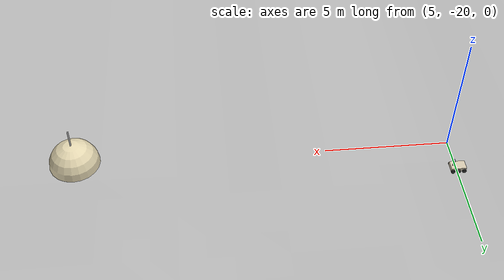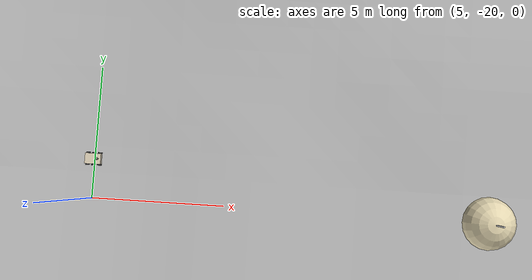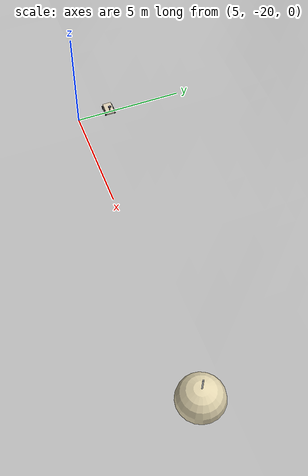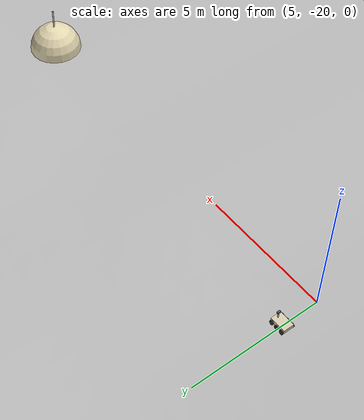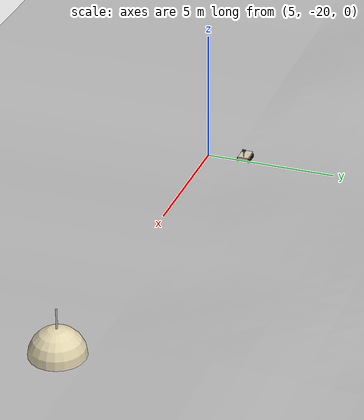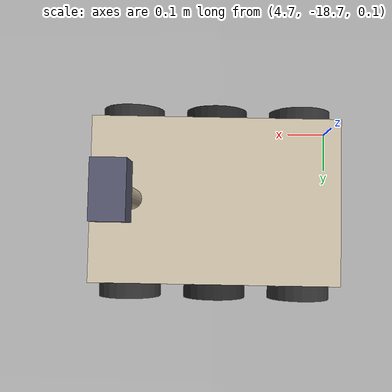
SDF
<sdf version="1.10">
 <world name="jezero_c">
  <physics name="2ms" type="ignored">
   <max_step_size>0.002</max_step_size>
   <real_time_factor>1.0</real_time_factor>
  </physics>
  <plugin filename="gz-sim-physics-system" name="gz::sim::systems::Physics"/>
  <plugin filename="gz-sim-user-commands-system" name="gz::sim::systems::UserCommands"/>
  <plugin filename="gz-sim-scene-broadcaster-system" name="gz::sim::systems::SceneBroadcaster"/>
  <plugin filename="gz-sim-sensors-system" name="gz::sim::systems::Sensors">
   <render_engine>ogre2</render_engine>
  </plugin>
  <scene>
   <ambient>0.55 0.35 0.25 1</ambient>
   <background>0.75 0.55 0.40 1</background>
   <grid>false</grid>
   <shadows>false</shadows>
  </scene>
  <light name="mars_sun" type="directional">
   <pose>0 0 50 0 0.7 0.3</pose>
   <diffuse>0.95 0.85 0.75 1</diffuse>
   <specular>0.4 0.35 0.3 1</specular>
   <attenuation>
    <range>1000</range>
    <constant>0.9</constant>
    <linear>0.01</linear>
    <quadratic>0.001</quadratic>
   </attenuation>
   <direction>-0.5 -0.3 -0.8</direction>
   <cast_shadows>false</cast_shadows>
  </light>
  <model name="jezero_terrain">
   <static>true</static>
   <link name="terrain_link">
    <collision name="terrain_collision">
     <geometry><mesh><uri>file://jezero_c/terrain_mesh/jezero_terrain.obj</uri></mesh></geometry>
     <surface>
      <friction><ode><mu>3.0</mu><mu2>3.0</mu2></ode></friction>
      <contact><ode><max_vel>0.01</max_vel><min_depth>0.001</min_depth></ode></contact>
     </surface>
    </collision>
    <visual name="terrain_visual">
     <geometry><mesh><uri>file://jezero_c/terrain_mesh/jezero_terrain.obj</uri></mesh></geometry>
    </visual>
   </link>
  </model>
  <include><uri>model://mars_rover</uri><name>rover</name><pose>5 -18.5 0.161 0 0 0</pose></include>
  <include><uri>model://habitat_dome</uri><name>habitat_dome</name><pose>20 -20 0.230 0 0 0</pose></include>
 </world>
</sdf>

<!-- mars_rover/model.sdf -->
<sdf version="1.9">
  <model name="mars_rover">

    <!-- ── Chassis / Body ───────────────────────────────────────────────── -->
    <link name="base_link">
      <pose>0 0 0.075 0 0 0</pose>
      <inertial>
        <mass>8.0</mass>
        <inertia>
          <ixx>0.084</ixx>
          <iyy>0.258</iyy>
          <izz>0.320</izz>
          <ixy>0</ixy><ixz>0</ixz><iyz>0</iyz>
        </inertia>
      </inertial>
      <collision name="chassis_collision">
        <geometry>
          <box><size>0.6 0.4 0.15</size></box>
        </geometry>
        <surface>
          <friction>
            <ode><mu>0.8</mu><mu2>0.8</mu2></ode>
          </friction>
        </surface>
      </collision>
      <visual name="chassis_visual">
        <geometry>
          <box><size>0.6 0.4 0.15</size></box>
        </geometry>
        <material>
          <ambient>0.85 0.8 0.7 1</ambient>
          <diffuse>0.85 0.8 0.7 1</diffuse>
          <specular>0.15 0.15 0.15 1</specular>
        </material>
      </visual>

      <!-- 360 LiDAR sensor on top of body -->
      <sensor name="lidar_360" type="gpu_lidar">
        <pose>0 0 0.12 0 0 0</pose>
        <topic>rover_lidar</topic>
        <update_rate>5</update_rate>
        <lidar>
          <scan>
            <horizontal>
              <samples>360</samples>
              <resolution>1</resolution>
              <min_angle>-3.14159</min_angle>
              <max_angle>3.14159</max_angle>
            </horizontal>
            <vertical>
              <samples>1</samples>
              <resolution>1</resolution>
              <min_angle>0</min_angle>
              <max_angle>0</max_angle>
            </vertical>
          </scan>
          <range>
            <min>0.15</min>
            <max>12.0</max>
            <resolution>0.01</resolution>
          </range>
        </lidar>
        <always_on>true</always_on>
        <visualize>false</visualize>
      </sensor>
    </link>

    <!-- ── Instrument Mast ──────────────────────────────────────────────── -->
    <link name="mast_link">
      <pose>0.2 0 0.225 0 0 0</pose>
      <inertial>
        <mass>0.3</mass>
        <inertia>
          <ixx>0.00250</ixx><iyy>0.00250</iyy><izz>0.000050</izz>
          <ixy>0</ixy><ixz>0</ixz><iyz>0</iyz>
        </inertia>
      </inertial>
      <visual name="mast_visual">
        <pose>0 0 0 0 0 0</pose>
        <geometry>
          <cylinder>
            <radius>0.025</radius>
            <length>0.3</length>
          </cylinder>
        </geometry>
        <material>
          <ambient>0.75 0.7 0.6 1</ambient>
          <diffuse>0.75 0.7 0.6 1</diffuse>
        </material>
      </visual>
    </link>
    <joint name="mast_joint" type="fixed">
      <parent>base_link</parent>
      <child>mast_link</child>
    </joint>

    <!-- ── Camera Head on Mast ──────────────────────────────────────────── -->
    <link name="camera_head_link">
      <pose>0.2 0 0.4 0 0 0</pose>
      <inertial>
        <mass>0.1</mass>
        <inertia>
          <ixx>0.000017</ixx><iyy>0.000017</iyy><izz>0.000017</izz>
          <ixy>0</ixy><ixz>0</ixz><iyz>0</iyz>
        </inertia>
      </inertial>
      <visual name="head_visual">
        <geometry>
          <box><size>0.07 0.12 0.07</size></box>
        </geometry>
        <material>
          <ambient>0.3 0.3 0.4 1</ambient>
          <diffuse>0.35 0.35 0.45 1</diffuse>
        </material>
      </visual>
    </link>
    <joint name="camera_head_joint" type="fixed">
      <parent>base_link</parent>
      <child>camera_head_link</child>
    </joint>

    <!-- Front-Left Wheel -->
    <link name="front_left_wheel">
      <pose>0.22 0.22 0.005 1.5708 0 0</pose>
      <inertial>
        <mass>0.5</mass>
        <inertia>
          <ixx>0.000820</ixx><iyy>0.000820</iyy><izz>0.001600</izz>
          <ixy>0</ixy><ixz>0</ixz><iyz>0</iyz>
        </inertia>
      </inertial>
      <collision name="collision">
        <geometry><cylinder><radius>0.08</radius><length>0.05</length></cylinder></geometry>
        <surface><friction><ode><mu>1.2</mu><mu2>1.2</mu2></ode></friction></surface>
      </collision>
      <visual name="visual">
        <geometry><cylinder><radius>0.08</radius><length>0.05</length></cylinder></geometry>
        <material><ambient>0.15 0.15 0.15 1</ambient><diffuse>0.2 0.2 0.2 1</diffuse></material>
      </visual>
    </link>
    <joint name="front_left_wheel_joint" type="revolute">
      <parent>base_link</parent>
      <child>front_left_wheel</child>
      <axis>
        <xyz expressed_in="__model__">0 1 0</xyz>
        <dynamics><damping>0.005</damping><friction>0.01</friction></dynamics>
        <limit><lower>-1e+16</lower><upper>1e+16</upper></limit>
      </axis>
    </joint>

    <!-- Front-Right Wheel -->
    <link name="front_right_wheel">
      <pose>0.22 -0.22 0.005 1.5708 0 0</pose>
      <inertial>
        <mass>0.5</mass>
        <inertia>
          <ixx>0.000820</ixx><iyy>0.000820</iyy><izz>0.001600</izz>
          <ixy>0</ixy><ixz>0</ixz><iyz>0</iyz>
        </inertia>
      </inertial>
      <collision name="collision">
        <geometry><cylinder><radius>0.08</radius><length>0.05</length></cylinder></geometry>
        <surface><friction><ode><mu>1.2</mu><mu2>1.2</mu2></ode></friction></surface>
      </collision>
      <visual name="visual">
        <geometry><cylinder><radius>0.08</radius><length>0.05</length></cylinder></geometry>
        <material><ambient>0.15 0.15 0.15 1</ambient><diffuse>0.2 0.2 0.2 1</diffuse></material>
      </visual>
    </link>
    <joint name="front_right_wheel_joint" type="revolute">
      <parent>base_link</parent>
      <child>front_right_wheel</child>
      <axis>
        <xyz expressed_in="__model__">0 1 0</xyz>
        <dynamics><damping>0.005</damping><friction>0.01</friction></dynamics>
        <limit><lower>-1e+16</lower><upper>1e+16</upper></limit>
      </axis>
    </joint>

    <!-- Mid-Left Wheel (driven by DiffDrive) -->
    <link name="left_mid_wheel">
      <pose>0.0 0.22 0.005 1.5708 0 0</pose>
      <inertial>
        <mass>0.5</mass>
        <inertia>
          <ixx>0.000820</ixx><iyy>0.000820</iyy><izz>0.001600</izz>
          <ixy>0</ixy><ixz>0</ixz><iyz>0</iyz>
        </inertia>
      </inertial>
      <collision name="collision">
        <geometry><cylinder><radius>0.08</radius><length>0.05</length></cylinder></geometry>
        <surface><friction><ode><mu>1.5</mu><mu2>1.5</mu2></ode></friction></surface>
      </collision>
      <visual name="visual">
        <geometry><cylinder><radius>0.08</radius><length>0.05</length></cylinder></geometry>
        <material><ambient>0.1 0.1 0.1 1</ambient><diffuse>0.15 0.15 0.15 1</diffuse></material>
      </visual>
    </link>
    <joint name="left_mid_wheel_joint" type="revolute">
      <parent>base_link</parent>
      <child>left_mid_wheel</child>
      <axis>
        <xyz expressed_in="__model__">0 1 0</xyz>
        <dynamics><damping>0.005</damping><friction>0.01</friction></dynamics>
        <limit><lower>-1e+16</lower><upper>1e+16</upper></limit>
      </axis>
    </joint>

    <!-- Mid-Right Wheel (driven by DiffDrive) -->
    <link name="right_mid_wheel">
      <pose>0.0 -0.22 0.005 1.5708 0 0</pose>
      <inertial>
        <mass>0.5</mass>
        <inertia>
          <ixx>0.000820</ixx><iyy>0.000820</iyy><izz>0.001600</izz>
          <ixy>0</ixy><ixz>0</ixz><iyz>0</iyz>
        </inertia>
      </inertial>
      <collision name="collision">
        <geometry><cylinder><radius>0.08</radius><length>0.05</length></cylinder></geometry>
        <surface><friction><ode><mu>1.5</mu><mu2>1.5</mu2></ode></friction></surface>
      </collision>
      <visual name="visual">
        <geometry><cylinder><radius>0.08</radius><length>0.05</length></cylinder></geometry>
        <material><ambient>0.1 0.1 0.1 1</ambient><diffuse>0.15 0.15 0.15 1</diffuse></material>
      </visual>
    </link>
    <joint name="right_mid_wheel_joint" type="revolute">
      <parent>base_link</parent>
      <child>right_mid_wheel</child>
      <axis>
        <xyz expressed_in="__model__">0 1 0</xyz>
        <dynamics><damping>0.005</damping><friction>0.01</friction></dynamics>
        <limit><lower>-1e+16</lower><upper>1e+16</upper></limit>
      </axis>
    </joint>

    <!-- Rear-Left Wheel -->
    <link name="rear_left_wheel">
      <pose>-0.22 0.22 0.005 1.5708 0 0</pose>
      <inertial>
        <mass>0.5</mass>
        <inertia>
          <ixx>0.000820</ixx><iyy>0.000820</iyy><izz>0.001600</izz>
          <ixy>0</ixy><ixz>0</ixz><iyz>0</iyz>
        </inertia>
      </inertial>
      <collision name="collision">
        <geometry><cylinder><radius>0.08</radius><length>0.05</length></cylinder></geometry>
        <surface><friction><ode><mu>1.2</mu><mu2>1.2</mu2></ode></friction></surface>
      </collision>
      <visual name="visual">
        <geometry><cylinder><radius>0.08</radius><length>0.05</length></cylinder></geometry>
        <material><ambient>0.15 0.15 0.15 1</ambient><diffuse>0.2 0.2 0.2 1</diffuse></material>
      </visual>
    </link>
    <joint name="rear_left_wheel_joint" type="revolute">
      <parent>base_link</parent>
      <child>rear_left_wheel</child>
      <axis>
        <xyz expressed_in="__model__">0 1 0</xyz>
        <dynamics><damping>0.005</damping><friction>0.01</friction></dynamics>
        <limit><lower>-1e+16</lower><upper>1e+16</upper></limit>
      </axis>
    </joint>

    <!-- Rear-Right Wheel -->
    <link name="rear_right_wheel">
      <pose>-0.22 -0.22 0.005 1.5708 0 0</pose>
      <inertial>
        <mass>0.5</mass>
        <inertia>
          <ixx>0.000820</ixx><iyy>0.000820</iyy><izz>0.001600</izz>
          <ixy>0</ixy><ixz>0</ixz><iyz>0</iyz>
        </inertia>
      </inertial>
      <collision name="collision">
        <geometry><cylinder><radius>0.08</radius><length>0.05</length></cylinder></geometry>
        <surface><friction><ode><mu>1.2</mu><mu2>1.2</mu2></ode></friction></surface>
      </collision>
      <visual name="visual">
        <geometry><cylinder><radius>0.08</radius><length>0.05</length></cylinder></geometry>
        <material><ambient>0.15 0.15 0.15 1</ambient><diffuse>0.2 0.2 0.2 1</diffuse></material>
      </visual>
    </link>
    <joint name="rear_right_wheel_joint" type="revolute">
      <parent>base_link</parent>
      <child>rear_right_wheel</child>
      <axis>
        <xyz expressed_in="__model__">0 1 0</xyz>
        <dynamics><damping>0.005</damping><friction>0.01</friction></dynamics>
        <limit><lower>-1e+16</lower><upper>1e+16</upper></limit>
      </axis>
    </joint>

    <!-- ── Plugins ───────────────────────────────────────────────────────── -->

    <!-- DiffDrive on mid wheel pair -->
    <plugin filename="gz-sim-diff-drive-system"
            name="gz::sim::systems::DiffDrive">
      <left_joint>left_mid_wheel_joint</left_joint>
      <right_joint>right_mid_wheel_joint</right_joint>
      <wheel_separation>0.44</wheel_separation>
      <wheel_radius>0.08</wheel_radius>
      <topic>cmd_vel</topic>
      <odom_topic>rover_odom</odom_topic>
      <odom_publish_frequency>10</odom_publish_frequency>
      <frame_id>odom</frame_id>
      <child_frame_id>base_link</child_frame_id>
      <min_velocity>-0.6</min_velocity>
      <max_velocity>0.6</max_velocity>
      <min_acceleration>-1.5</min_acceleration>
      <max_acceleration>1.5</max_acceleration>
    </plugin>

    <!-- DiffDrive on front wheel pair — 6WD: same cmd_vel, separate odom topic -->
    <plugin filename="gz-sim-diff-drive-system"
            name="gz::sim::systems::DiffDrive">
      <left_joint>front_left_wheel_joint</left_joint>
      <right_joint>front_right_wheel_joint</right_joint>
      <wheel_separation>0.44</wheel_separation>
      <wheel_radius>0.08</wheel_radius>
      <topic>cmd_vel</topic>
      <odom_topic>rover_odom_front</odom_topic>
      <odom_publish_frequency>0</odom_publish_frequency>
      <frame_id>odom</frame_id>
      <child_frame_id>base_link_front</child_frame_id>
      <min_velocity>-0.6</min_velocity>
      <max_velocity>0.6</max_velocity>
      <min_acceleration>-1.5</min_acceleration>
      <max_acceleration>1.5</max_acceleration>
    </plugin>

    <!-- DiffDrive on rear wheel pair — 6WD: same cmd_vel, separate odom topic -->
    <plugin filename="gz-sim-diff-drive-system"
            name="gz::sim::systems::DiffDrive">
      <left_joint>rear_left_wheel_joint</left_joint>
      <right_joint>rear_right_wheel_joint</right_joint>
      <wheel_separation>0.44</wheel_separation>
      <wheel_radius>0.08</wheel_radius>
      <topic>cmd_vel</topic>
      <odom_topic>rover_odom_rear</odom_topic>
      <odom_publish_frequency>0</odom_publish_frequency>
      <frame_id>odom</frame_id>
      <child_frame_id>base_link_rear</child_frame_id>
      <min_velocity>-0.6</min_velocity>
      <max_velocity>0.6</max_velocity>
      <min_acceleration>-1.5</min_acceleration>
      <max_acceleration>1.5</max_acceleration>
    </plugin>

    <!-- Joint state publisher -->
    <plugin filename="gz-sim-joint-state-publisher-system"
            name="gz::sim::systems::JointStatePublisher">
      <topic>rover_joint_states</topic>
      <joint_name>front_left_wheel_joint</joint_name>
      <joint_name>front_right_wheel_joint</joint_name>
      <joint_name>left_mid_wheel_joint</joint_name>
      <joint_name>right_mid_wheel_joint</joint_name>
      <joint_name>rear_left_wheel_joint</joint_name>
      <joint_name>rear_right_wheel_joint</joint_name>
    </plugin>

  </model>
</sdf>

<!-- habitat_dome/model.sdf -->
<sdf version="1.9">
  <model name="habitat_dome">
    <static>true</static>
    <link name="dome_link">
      <visual name="dome_visual">
        <geometry>
          <sphere>
            <radius>1.0</radius>
          </sphere>
        </geometry>
        <material>
          <ambient>0.9 0.85 0.7 1</ambient>
          <diffuse>0.9 0.85 0.7 1</diffuse>
        </material>
      </visual>
      <collision name="dome_collision">
        <geometry>
          <sphere>
            <radius>1.0</radius>
          </sphere>
        </geometry>
      </collision>
      <!-- Sink half into ground so it looks like a hemisphere -->
      <pose>0 0 0 0 0 0</pose>
    </link>
    <!-- Flag pole on top for visibility -->
    <link name="flag_pole">
      <pose>0 0 1.0 0 0 0</pose>
      <visual name="pole_visual">
        <geometry>
          <cylinder>
            <radius>0.03</radius>
            <length>1.5</length>
          </cylinder>
        </geometry>
        <material>
          <ambient>0.8 0.8 0.8 1</ambient>
          <diffuse>0.8 0.8 0.8 1</diffuse>
        </material>
      </visual>
    </link>
    <joint name="pole_joint" type="fixed">
      <parent>dome_link</parent>
      <child>flag_pole</child>
    </joint>
  </model>
</sdf>
